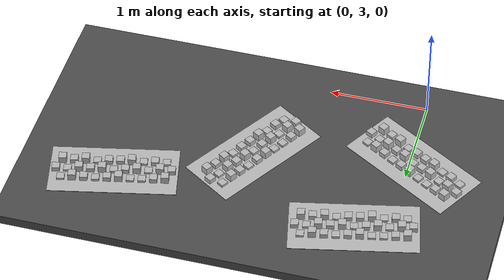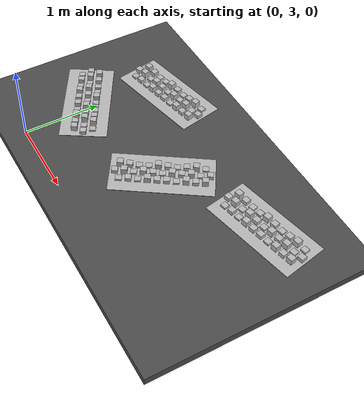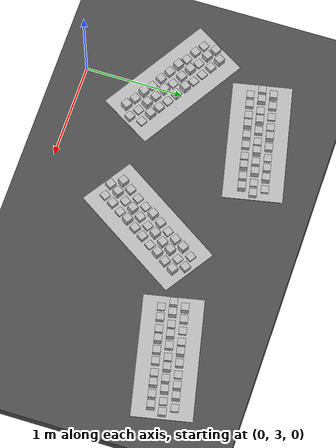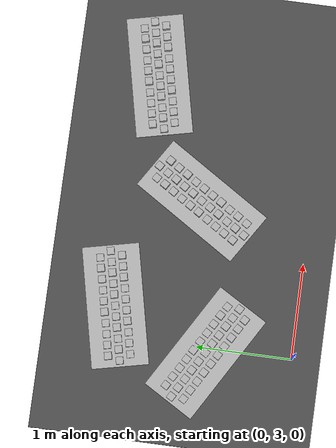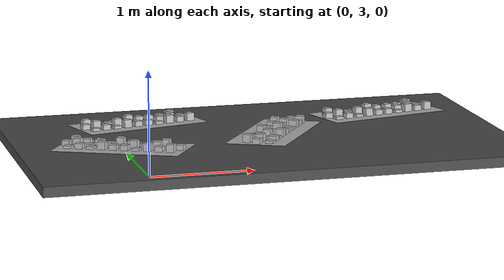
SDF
<sdf version="1.6">
 <world name="default">
  <model name="ground_plane">
   <static>1</static>
   <link name="link">
    <collision name="collision">
     <geometry><plane><normal>0 0 1</normal><size>100 100</size></plane></geometry>
     <surface>
      <contact><collide_bitmask>65535</collide_bitmask></contact>
      <friction><ode><mu>100</mu><mu2>50</mu2></ode></friction>
     </surface>
    </collision>
    <visual name="visual">
     <cast_shadows>0</cast_shadows>
     <geometry><plane><normal>0 0 1</normal><size>100 100</size></plane></geometry>
     <material>
      <script><uri>file://media/materials/scripts/gazebo.material</uri><name>Gazebo/Grey</name></script>
     </material>
    </visual>
   </link>
  </model>
  <model name="frc2016_roughterrain_clone_2_clone_0_clone">
   <static>1</static>
   <link name="link">
    <visual name="platform">
     <pose>0 0 0.08269 0 -0 0</pose>
     <geometry><box><size>1.27 0.5969 0.003175</size></box></geometry>
    </visual>
    <collision name="platform">
     <pose>0 0 0.08269 0 -0 0</pose>
     <geometry><box><size>1.27 0.5969 0.003175</size></box></geometry>
    </collision>
    <visual name="row1_block1_sm">
     <pose>0.51435 0.1143 0.09698 0 -0 0</pose>
     <geometry><box><size>0.0762 0.0762 0.0254</size></box></geometry>
    </visual>
    <collision name="row1_block1_sm">
     <pose>0.51435 0.1143 0.09698 0 -0 0</pose>
     <geometry><box><size>0.0762 0.0762 0.0254</size></box></geometry>
    </collision>
    <visual name="row1_block2_lg">
     <pose>0.40005 0.1143 0.12238 0 -0 0</pose>
     <geometry><box><size>0.0762 0.0762 0.0762</size></box></geometry>
    </visual>
    <collision name="row1_block2_lg">
     <pose>0.40005 0.1143 0.12238 0 -0 0</pose>
     <geometry><box><size>0.0762 0.0762 0.0762</size></box></geometry>
    </collision>
    <visual name="row1_block3_md">
     <pose>0.28575 0.1143 0.10968 0 -0 0</pose>
     <geometry><box><size>0.0762 0.0762 0.0508</size></box></geometry>
    </visual>
    <collision name="row1_block3_md">
     <pose>0.28575 0.1143 0.10968 0 -0 0</pose>
     <geometry><box><size>0.0762 0.0762 0.0508</size></box></geometry>
    </collision>
    <visual name="row1_block4_sm">
     <pose>0.17145 0.1143 0.09698 0 -0 0</pose>
     <geometry><box><size>0.0762 0.0762 0.0254</size></box></geometry>
    </visual>
    <collision name="row1_block4_sm">
     <pose>0.17145 0.1143 0.09698 0 -0 0</pose>
     <geometry><box><size>0.0762 0.0762 0.0254</size></box></geometry>
    </collision>
    <visual name="row1_block5_md">
     <pose>0.05715 0.1143 0.10968 0 -0 0</pose>
     <geometry><box><size>0.0762 0.0762 0.0508</size></box></geometry>
    </visual>
    <collision name="row1_block5_md">
     <pose>0.05715 0.1143 0.10968 0 -0 0</pose>
     <geometry><box><size>0.0762 0.0762 0.0508</size></box></geometry>
    </collision>
    <visual name="row1_block6_lg">
     <pose>-0.05715 0.1143 0.12238 0 -0 0</pose>
     <geometry><box><size>0.0762 0.0762 0.0762</size></box></geometry>
    </visual>
    <collision name="row1_block6_lg">
     <pose>-0.05715 0.1143 0.12238 0 -0 0</pose>
     <geometry><box><size>0.0762 0.0762 0.0762</size></box></geometry>
    </collision>
    <visual name="row1_block7_sm">
     <pose>-0.17145 0.1143 0.09698 0 -0 0</pose>
     <geometry><box><size>0.0762 0.0762 0.0254</size></box></geometry>
    </visual>
    <collision name="row1_block7_sm">
     <pose>-0.17145 0.1143 0.09698 0 -0 0</pose>
     <geometry><box><size>0.0762 0.0762 0.0254</size></box></geometry>
    </collision>
    <visual name="row1_block8_sm">
     <pose>-0.28575 0.1143 0.09698 0 -0 0</pose>
     <geometry><box><size>0.0762 0.0762 0.0254</size></box></geometry>
    </visual>
    <collision name="row1_block8_sm">
     <pose>-0.28575 0.1143 0.09698 0 -0 0</pose>
     <geometry><box><size>0.0762 0.0762 0.0254</size></box></geometry>
    </collision>
    <visual name="row1_block9_md">
     <pose>-0.40005 0.1143 0.10968 0 -0 0</pose>
     <geometry><box><size>0.0762 0.0762 0.0508</size></box></geometry>
    </visual>
    <collision name="row1_block9_md">
     <pose>-0.40005 0.1143 0.10968 0 -0 0</pose>
     <geometry><box><size>0.0762 0.0762 0.0508</size></box></geometry>
    </collision>
    <visual name="row1_block10_lg">
     <pose>-0.51435 0.1143 0.12238 0 -0 0</pose>
     <geometry><box><size>0.0762 0.0762 0.0762</size></box></geometry>
    </visual>
    <collision name="row1_block10_lg">
     <pose>-0.51435 0.1143 0.12238 0 -0 0</pose>
     <geometry><box><size>0.0762 0.0762 0.0762</size></box></geometry>
    </collision>
    <visual name="row2_block1_md">
     <pose>0.5715 0 0.10968 0 -0 0</pose>
     <geometry><box><size>0.0762 0.0762 0.0508</size></box></geometry>
    </visual>
    <collision name="row2_block1_md">
     <pose>0.5715 0 0.10968 0 -0 0</pose>
     <geometry><box><size>0.0762 0.0762 0.0508</size></box></geometry>
    </collision>
    <visual name="row2_block2_sm">
     <pose>0.4572 0 0.09698 0 -0 0</pose>
     <geometry><box><size>0.0762 0.0762 0.0254</size></box></geometry>
    </visual>
    <collision name="row2_block2_sm">
     <pose>0.4572 0 0.09698 0 -0 0</pose>
     <geometry><box><size>0.0762 0.0762 0.0254</size></box></geometry>
    </collision>
    <visual name="row2_block3_lg">
     <pose>0.3429 0 0.12238 0 -0 0</pose>
     <geometry><box><size>0.0762 0.0762 0.0762</size></box></geometry>
    </visual>
    <collision name="row2_block3_lg">
     <pose>0.3429 0 0.12238 0 -0 0</pose>
     <geometry><box><size>0.0762 0.0762 0.0762</size></box></geometry>
    </collision>
    <visual name="row2_block4_md">
     <pose>0.2286 0 0.10968 0 -0 0</pose>
     <geometry><box><size>0.0762 0.0762 0.0508</size></box></geometry>
    </visual>
    <collision name="row2_block4_md">
     <pose>0.2286 0 0.10968 0 -0 0</pose>
     <geometry><box><size>0.0762 0.0762 0.0508</size></box></geometry>
    </collision>
    <visual name="row2_block5_lg">
     <pose>0.1143 0 0.12238 0 -0 0</pose>
     <geometry><box><size>0.0762 0.0762 0.0762</size></box></geometry>
    </visual>
    <collision name="row2_block5_lg">
     <pose>0.1143 0 0.12238 0 -0 0</pose>
     <geometry><box><size>0.0762 0.0762 0.0762</size></box></geometry>
    </collision>
    <visual name="row2_block6_sm">
     <pose>0 0 0.09698 0 -0 0</pose>
     <geometry><box><size>0.0762 0.0762 0.0254</size></box></geometry>
    </visual>
    <collision name="row2_block6_sm">
     <pose>0 0 0.09698 0 -0 0</pose>
     <geometry><box><size>0.0762 0.0762 0.0254</size></box></geometry>
    </collision>
    <visual name="row2_block7_md">
     <pose>-0.1143 0 0.10968 0 -0 0</pose>
     <geometry><box><size>0.0762 0.0762 0.0508</size></box></geometry>
    </visual>
    <collision name="row2_block7_md">
     <pose>-0.1143 0 0.10968 0 -0 0</pose>
     <geometry><box><size>0.0762 0.0762 0.0508</size></box></geometry>
    </collision>
    <visual name="row2_block8_lg">
     <pose>-0.2286 0 0.12238 0 -0 0</pose>
     <geometry><box><size>0.0762 0.0762 0.0762</size></box></geometry>
    </visual>
    <collision name="row2_block8_lg">
     <pose>-0.2286 0 0.12238 0 -0 0</pose>
     <geometry><box><size>0.0762 0.0762 0.0762</size></box></geometry>
    </collision>
    <visual name="row2_block9_sm">
     <pose>-0.3429 0 0.09698 0 -0 0</pose>
     <geometry><box><size>0.0762 0.0762 0.0254</size></box></geometry>
    </visual>
    <collision name="row2_block9_sm">
     <pose>-0.3429 0 0.09698 0 -0 0</pose>
     <geometry><box><size>0.0762 0.0762 0.0254</size></box></geometry>
    </collision>
    <visual name="row2_block10_lg">
     <pose>-0.4572 0 0.12238 0 -0 0</pose>
     <geometry><box><size>0.0762 0.0762 0.0762</size></box></geometry>
    </visual>
    <collision name="row2_block10_lg">
     <pose>-0.4572 0 0.12238 0 -0 0</pose>
     <geometry><box><size>0.0762 0.0762 0.0762</size></box></geometry>
    </collision>
    <visual name="row2_block11_md">
     <pose>-0.5715 0 0.10968 0 -0 0</pose>
     <geometry><box><size>0.0762 0.0762 0.0508</size></box></geometry>
    </visual>
    <collision name="row2_block11_md">
     <pose>-0.5715 0 0.10968 0 -0 0</pose>
     <geometry><box><size>0.0762 0.0762 0.0508</size></box></geometry>
    </collision>
    <visual name="row3_block1_lg">
     <pose>0.51435 -0.1143 0.12238 0 -0 0</pose>
     <geometry><box><size>0.0762 0.0762 0.0762</size></box></geometry>
    </visual>
    <collision name="row3_block1_lg">
     <pose>0.51435 -0.1143 0.12238 0 -0 0</pose>
     <geometry><box><size>0.0762 0.0762 0.0762</size></box></geometry>
    </collision>
    <visual name="row3_block2_md">
     <pose>0.40005 -0.1143 0.10968 0 -0 0</pose>
     <geometry><box><size>0.0762 0.0762 0.0508</size></box></geometry>
    </visual>
    <collision name="row3_block2_md">
     <pose>0.40005 -0.1143 0.10968 0 -0 0</pose>
     <geometry><box><size>0.0762 0.0762 0.0508</size></box></geometry>
    </collision>
    <visual name="row3_block3_lg">
     <pose>0.28575 -0.1143 0.12238 0 -0 0</pose>
     <geometry><box><size>0.0762 0.0762 0.0762</size></box></geometry>
    </visual>
    <collision name="row3_block3_lg">
     <pose>0.28575 -0.1143 0.12238 0 -0 0</pose>
     <geometry><box><size>0.0762 0.0762 0.0762</size></box></geometry>
    </collision>
    <visual name="row3_block4_sm">
     <pose>0.17145 -0.1143 0.09698 0 -0 0</pose>
     <geometry><box><size>0.0762 0.0762 0.0254</size></box></geometry>
    </visual>
    <collision name="row3_block4_sm">
     <pose>0.17145 -0.1143 0.09698 0 -0 0</pose>
     <geometry><box><size>0.0762 0.0762 0.0254</size></box></geometry>
    </collision>
    <visual name="row3_block5_md">
     <pose>0.05715 -0.1143 0.10968 0 -0 0</pose>
     <geometry><box><size>0.0762 0.0762 0.0508</size></box></geometry>
    </visual>
    <collision name="row3_block5_md">
     <pose>0.05715 -0.1143 0.10968 0 -0 0</pose>
     <geometry><box><size>0.0762 0.0762 0.0508</size></box></geometry>
    </collision>
    <visual name="row3_block6_md">
     <pose>-0.05715 -0.1143 0.10968 0 -0 0</pose>
     <geometry><box><size>0.0762 0.0762 0.0508</size></box></geometry>
    </visual>
    <collision name="row3_block6_md">
     <pose>-0.05715 -0.1143 0.10968 0 -0 0</pose>
     <geometry><box><size>0.0762 0.0762 0.0508</size></box></geometry>
    </collision>
    <visual name="row3_block7_lg">
     <pose>-0.17145 -0.1143 0.12238 0 -0 0</pose>
     <geometry><box><size>0.0762 0.0762 0.0762</size></box></geometry>
    </visual>
    <collision name="row3_block7_lg">
     <pose>-0.17145 -0.1143 0.12238 0 -0 0</pose>
     <geometry><box><size>0.0762 0.0762 0.0762</size></box></geometry>
    </collision>
    <visual name="row3_block8_sm">
     <pose>-0.28575 -0.1143 0.09698 0 -0 0</pose>
     <geometry><box><size>0.0762 0.0762 0.0254</size></box></geometry>
    </visual>
    <collision name="row3_block8_sm">
     <pose>-0.28575 -0.1143 0.09698 0 -0 0</pose>
     <geometry><box><size>0.0762 0.0762 0.0254</size></box></geometry>
    </collision>
    <visual name="row3_block9_md">
     <pose>-0.40005 -0.1143 0.10968 0 -0 0</pose>
     <geometry><box><size>0.0762 0.0762 0.0508</size></box></geometry>
    </visual>
    <collision name="row3_block9_md">
     <pose>-0.40005 -0.1143 0.10968 0 -0 0</pose>
     <geometry><box><size>0.0762 0.0762 0.0508</size></box></geometry>
    </collision>
    <visual name="row3_block10_sm">
     <pose>-0.51435 -0.1143 0.09698 0 -0 0</pose>
     <geometry><box><size>0.0762 0.0762 0.0254</size></box></geometry>
    </visual>
    <collision name="row3_block10_sm">
     <pose>-0.51435 -0.1143 0.09698 0 -0 0</pose>
     <geometry><box><size>0.0762 0.0762 0.0254</size></box></geometry>
    </collision>
   </link>
   <pose>0.309695 4.87951 -0.002523 -0.037204 0.000686 0.216059</pose>
  </model>
  <model name="frc2016_roughterrain_clone_2_clone_clone_clone_clone">
   <static>1</static>
   <link name="link">
    <visual name="platform">
     <pose>0 0 0.08269 0 -0 0</pose>
     <geometry><box><size>1.27 0.5969 0.003175</size></box></geometry>
    </visual>
    <collision name="platform">
     <pose>0 0 0.08269 0 -0 0</pose>
     <geometry><box><size>1.27 0.5969 0.003175</size></box></geometry>
    </collision>
    <visual name="row1_block1_sm">
     <pose>0.51435 0.1143 0.09698 0 -0 0</pose>
     <geometry><box><size>0.0762 0.0762 0.0254</size></box></geometry>
    </visual>
    <collision name="row1_block1_sm">
     <pose>0.51435 0.1143 0.09698 0 -0 0</pose>
     <geometry><box><size>0.0762 0.0762 0.0254</size></box></geometry>
    </collision>
    <visual name="row1_block2_lg">
     <pose>0.40005 0.1143 0.12238 0 -0 0</pose>
     <geometry><box><size>0.0762 0.0762 0.0762</size></box></geometry>
    </visual>
    <collision name="row1_block2_lg">
     <pose>0.40005 0.1143 0.12238 0 -0 0</pose>
     <geometry><box><size>0.0762 0.0762 0.0762</size></box></geometry>
    </collision>
    <visual name="row1_block3_md">
     <pose>0.28575 0.1143 0.10968 0 -0 0</pose>
     <geometry><box><size>0.0762 0.0762 0.0508</size></box></geometry>
    </visual>
    <collision name="row1_block3_md">
     <pose>0.28575 0.1143 0.10968 0 -0 0</pose>
     <geometry><box><size>0.0762 0.0762 0.0508</size></box></geometry>
    </collision>
    <visual name="row1_block4_sm">
     <pose>0.17145 0.1143 0.09698 0 -0 0</pose>
     <geometry><box><size>0.0762 0.0762 0.0254</size></box></geometry>
    </visual>
    <collision name="row1_block4_sm">
     <pose>0.17145 0.1143 0.09698 0 -0 0</pose>
     <geometry><box><size>0.0762 0.0762 0.0254</size></box></geometry>
    </collision>
    <visual name="row1_block5_md">
     <pose>0.05715 0.1143 0.10968 0 -0 0</pose>
     <geometry><box><size>0.0762 0.0762 0.0508</size></box></geometry>
    </visual>
    <collision name="row1_block5_md">
     <pose>0.05715 0.1143 0.10968 0 -0 0</pose>
     <geometry><box><size>0.0762 0.0762 0.0508</size></box></geometry>
    </collision>
    <visual name="row1_block6_lg">
     <pose>-0.05715 0.1143 0.12238 0 -0 0</pose>
     <geometry><box><size>0.0762 0.0762 0.0762</size></box></geometry>
    </visual>
    <collision name="row1_block6_lg">
     <pose>-0.05715 0.1143 0.12238 0 -0 0</pose>
     <geometry><box><size>0.0762 0.0762 0.0762</size></box></geometry>
    </collision>
    <visual name="row1_block7_sm">
     <pose>-0.17145 0.1143 0.09698 0 -0 0</pose>
     <geometry><box><size>0.0762 0.0762 0.0254</size></box></geometry>
    </visual>
    <collision name="row1_block7_sm">
     <pose>-0.17145 0.1143 0.09698 0 -0 0</pose>
     <geometry><box><size>0.0762 0.0762 0.0254</size></box></geometry>
    </collision>
    <visual name="row1_block8_sm">
     <pose>-0.28575 0.1143 0.09698 0 -0 0</pose>
     <geometry><box><size>0.0762 0.0762 0.0254</size></box></geometry>
    </visual>
    <collision name="row1_block8_sm">
     <pose>-0.28575 0.1143 0.09698 0 -0 0</pose>
     <geometry><box><size>0.0762 0.0762 0.0254</size></box></geometry>
    </collision>
    <visual name="row1_block9_md">
     <pose>-0.40005 0.1143 0.10968 0 -0 0</pose>
     <geometry><box><size>0.0762 0.0762 0.0508</size></box></geometry>
    </visual>
    <collision name="row1_block9_md">
     <pose>-0.40005 0.1143 0.10968 0 -0 0</pose>
     <geometry><box><size>0.0762 0.0762 0.0508</size></box></geometry>
    </collision>
    <visual name="row1_block10_lg">
     <pose>-0.51435 0.1143 0.12238 0 -0 0</pose>
     <geometry><box><size>0.0762 0.0762 0.0762</size></box></geometry>
    </visual>
    <collision name="row1_block10_lg">
     <pose>-0.51435 0.1143 0.12238 0 -0 0</pose>
     <geometry><box><size>0.0762 0.0762 0.0762</size></box></geometry>
    </collision>
    <visual name="row2_block1_md">
     <pose>0.5715 0 0.10968 0 -0 0</pose>
     <geometry><box><size>0.0762 0.0762 0.0508</size></box></geometry>
    </visual>
    <collision name="row2_block1_md">
     <pose>0.5715 0 0.10968 0 -0 0</pose>
     <geometry><box><size>0.0762 0.0762 0.0508</size></box></geometry>
    </collision>
    <visual name="row2_block2_sm">
     <pose>0.4572 0 0.09698 0 -0 0</pose>
     <geometry><box><size>0.0762 0.0762 0.0254</size></box></geometry>
    </visual>
    <collision name="row2_block2_sm">
     <pose>0.4572 0 0.09698 0 -0 0</pose>
     <geometry><box><size>0.0762 0.0762 0.0254</size></box></geometry>
    </collision>
    <visual name="row2_block3_lg">
     <pose>0.3429 0 0.12238 0 -0 0</pose>
     <geometry><box><size>0.0762 0.0762 0.0762</size></box></geometry>
    </visual>
    <collision name="row2_block3_lg">
     <pose>0.3429 0 0.12238 0 -0 0</pose>
     <geometry><box><size>0.0762 0.0762 0.0762</size></box></geometry>
    </collision>
    <visual name="row2_block4_md">
     <pose>0.2286 0 0.10968 0 -0 0</pose>
     <geometry><box><size>0.0762 0.0762 0.0508</size></box></geometry>
    </visual>
    <collision name="row2_block4_md">
     <pose>0.2286 0 0.10968 0 -0 0</pose>
     <geometry><box><size>0.0762 0.0762 0.0508</size></box></geometry>
    </collision>
    <visual name="row2_block5_lg">
     <pose>0.1143 0 0.12238 0 -0 0</pose>
     <geometry><box><size>0.0762 0.0762 0.0762</size></box></geometry>
    </visual>
    <collision name="row2_block5_lg">
     <pose>0.1143 0 0.12238 0 -0 0</pose>
     <geometry><box><size>0.0762 0.0762 0.0762</size></box></geometry>
    </collision>
    <visual name="row2_block6_sm">
     <pose>0 0 0.09698 0 -0 0</pose>
     <geometry><box><size>0.0762 0.0762 0.0254</size></box></geometry>
    </visual>
    <collision name="row2_block6_sm">
     <pose>0 0 0.09698 0 -0 0</pose>
     <geometry><box><size>0.0762 0.0762 0.0254</size></box></geometry>
    </collision>
    <visual name="row2_block7_md">
     <pose>-0.1143 0 0.10968 0 -0 0</pose>
     <geometry><box><size>0.0762 0.0762 0.0508</size></box></geometry>
    </visual>
    <collision name="row2_block7_md">
     <pose>-0.1143 0 0.10968 0 -0 0</pose>
     <geometry><box><size>0.0762 0.0762 0.0508</size></box></geometry>
    </collision>
    <visual name="row2_block8_lg">
     <pose>-0.2286 0 0.12238 0 -0 0</pose>
     <geometry><box><size>0.0762 0.0762 0.0762</size></box></geometry>
    </visual>
    <collision name="row2_block8_lg">
     <pose>-0.2286 0 0.12238 0 -0 0</pose>
     <geometry><box><size>0.0762 0.0762 0.0762</size></box></geometry>
    </collision>
    <visual name="row2_block9_sm">
     <pose>-0.3429 0 0.09698 0 -0 0</pose>
     <geometry><box><size>0.0762 0.0762 0.0254</size></box></geometry>
    </visual>
    <collision name="row2_block9_sm">
     <pose>-0.3429 0 0.09698 0 -0 0</pose>
     <geometry><box><size>0.0762 0.0762 0.0254</size></box></geometry>
    </collision>
    <visual name="row2_block10_lg">
     <pose>-0.4572 0 0.12238 0 -0 0</pose>
     <geometry><box><size>0.0762 0.0762 0.0762</size></box></geometry>
    </visual>
    <collision name="row2_block10_lg">
     <pose>-0.4572 0 0.12238 0 -0 0</pose>
     <geometry><box><size>0.0762 0.0762 0.0762</size></box></geometry>
    </collision>
    <visual name="row2_block11_md">
     <pose>-0.5715 0 0.10968 0 -0 0</pose>
     <geometry><box><size>0.0762 0.0762 0.0508</size></box></geometry>
    </visual>
    <collision name="row2_block11_md">
     <pose>-0.5715 0 0.10968 0 -0 0</pose>
     <geometry><box><size>0.0762 0.0762 0.0508</size></box></geometry>
    </collision>
    <visual name="row3_block1_lg">
     <pose>0.51435 -0.1143 0.12238 0 -0 0</pose>
     <geometry><box><size>0.0762 0.0762 0.0762</size></box></geometry>
    </visual>
    <collision name="row3_block1_lg">
     <pose>0.51435 -0.1143 0.12238 0 -0 0</pose>
     <geometry><box><size>0.0762 0.0762 0.0762</size></box></geometry>
    </collision>
    <visual name="row3_block2_md">
     <pose>0.40005 -0.1143 0.10968 0 -0 0</pose>
     <geometry><box><size>0.0762 0.0762 0.0508</size></box></geometry>
    </visual>
    <collision name="row3_block2_md">
     <pose>0.40005 -0.1143 0.10968 0 -0 0</pose>
     <geometry><box><size>0.0762 0.0762 0.0508</size></box></geometry>
    </collision>
    <visual name="row3_block3_lg">
     <pose>0.28575 -0.1143 0.12238 0 -0 0</pose>
     <geometry><box><size>0.0762 0.0762 0.0762</size></box></geometry>
    </visual>
    <collision name="row3_block3_lg">
     <pose>0.28575 -0.1143 0.12238 0 -0 0</pose>
     <geometry><box><size>0.0762 0.0762 0.0762</size></box></geometry>
    </collision>
    <visual name="row3_block4_sm">
     <pose>0.17145 -0.1143 0.09698 0 -0 0</pose>
     <geometry><box><size>0.0762 0.0762 0.0254</size></box></geometry>
    </visual>
    <collision name="row3_block4_sm">
     <pose>0.17145 -0.1143 0.09698 0 -0 0</pose>
     <geometry><box><size>0.0762 0.0762 0.0254</size></box></geometry>
    </collision>
    <visual name="row3_block5_md">
     <pose>0.05715 -0.1143 0.10968 0 -0 0</pose>
     <geometry><box><size>0.0762 0.0762 0.0508</size></box></geometry>
    </visual>
    <collision name="row3_block5_md">
     <pose>0.05715 -0.1143 0.10968 0 -0 0</pose>
     <geometry><box><size>0.0762 0.0762 0.0508</size></box></geometry>
    </collision>
    <visual name="row3_block6_md">
     <pose>-0.05715 -0.1143 0.10968 0 -0 0</pose>
     <geometry><box><size>0.0762 0.0762 0.0508</size></box></geometry>
    </visual>
    <collision name="row3_block6_md">
     <pose>-0.05715 -0.1143 0.10968 0 -0 0</pose>
     <geometry><box><size>0.0762 0.0762 0.0508</size></box></geometry>
    </collision>
    <visual name="row3_block7_lg">
     <pose>-0.17145 -0.1143 0.12238 0 -0 0</pose>
     <geometry><box><size>0.0762 0.0762 0.0762</size></box></geometry>
    </visual>
    <collision name="row3_block7_lg">
     <pose>-0.17145 -0.1143 0.12238 0 -0 0</pose>
     <geometry><box><size>0.0762 0.0762 0.0762</size></box></geometry>
    </collision>
    <visual name="row3_block8_sm">
     <pose>-0.28575 -0.1143 0.09698 0 -0 0</pose>
     <geometry><box><size>0.0762 0.0762 0.0254</size></box></geometry>
    </visual>
    <collision name="row3_block8_sm">
     <pose>-0.28575 -0.1143 0.09698 0 -0 0</pose>
     <geometry><box><size>0.0762 0.0762 0.0254</size></box></geometry>
    </collision>
    <visual name="row3_block9_md">
     <pose>-0.40005 -0.1143 0.10968 0 -0 0</pose>
     <geometry><box><size>0.0762 0.0762 0.0508</size></box></geometry>
    </visual>
    <collision name="row3_block9_md">
     <pose>-0.40005 -0.1143 0.10968 0 -0 0</pose>
     <geometry><box><size>0.0762 0.0762 0.0508</size></box></geometry>
    </collision>
    <visual name="row3_block10_sm">
     <pose>-0.51435 -0.1143 0.09698 0 -0 0</pose>
     <geometry><box><size>0.0762 0.0762 0.0254</size></box></geometry>
    </visual>
    <collision name="row3_block10_sm">
     <pose>-0.51435 -0.1143 0.09698 0 -0 0</pose>
     <geometry><box><size>0.0762 0.0762 0.0254</size></box></geometry>
    </collision>
   </link>
   <pose>1.51448 4.13381 0 -0.025774 0.026842 1.00316</pose>
  </model>
  <model name="frc2016_roughterrain_clone_2_clone_clone_3_clone">
   <static>1</static>
   <link name="link">
    <visual name="platform">
     <pose>0 0 0.08269 0 -0 0</pose>
     <geometry><box><size>1.27 0.5969 0.003175</size></box></geometry>
    </visual>
    <collision name="platform">
     <pose>0 0 0.08269 0 -0 0</pose>
     <geometry><box><size>1.27 0.5969 0.003175</size></box></geometry>
    </collision>
    <visual name="row1_block1_sm">
     <pose>0.51435 0.1143 0.09698 0 -0 0</pose>
     <geometry><box><size>0.0762 0.0762 0.0254</size></box></geometry>
    </visual>
    <collision name="row1_block1_sm">
     <pose>0.51435 0.1143 0.09698 0 -0 0</pose>
     <geometry><box><size>0.0762 0.0762 0.0254</size></box></geometry>
    </collision>
    <visual name="row1_block2_lg">
     <pose>0.40005 0.1143 0.12238 0 -0 0</pose>
     <geometry><box><size>0.0762 0.0762 0.0762</size></box></geometry>
    </visual>
    <collision name="row1_block2_lg">
     <pose>0.40005 0.1143 0.12238 0 -0 0</pose>
     <geometry><box><size>0.0762 0.0762 0.0762</size></box></geometry>
    </collision>
    <visual name="row1_block3_md">
     <pose>0.28575 0.1143 0.10968 0 -0 0</pose>
     <geometry><box><size>0.0762 0.0762 0.0508</size></box></geometry>
    </visual>
    <collision name="row1_block3_md">
     <pose>0.28575 0.1143 0.10968 0 -0 0</pose>
     <geometry><box><size>0.0762 0.0762 0.0508</size></box></geometry>
    </collision>
    <visual name="row1_block4_sm">
     <pose>0.17145 0.1143 0.09698 0 -0 0</pose>
     <geometry><box><size>0.0762 0.0762 0.0254</size></box></geometry>
    </visual>
    <collision name="row1_block4_sm">
     <pose>0.17145 0.1143 0.09698 0 -0 0</pose>
     <geometry><box><size>0.0762 0.0762 0.0254</size></box></geometry>
    </collision>
    <visual name="row1_block5_md">
     <pose>0.05715 0.1143 0.10968 0 -0 0</pose>
     <geometry><box><size>0.0762 0.0762 0.0508</size></box></geometry>
    </visual>
    <collision name="row1_block5_md">
     <pose>0.05715 0.1143 0.10968 0 -0 0</pose>
     <geometry><box><size>0.0762 0.0762 0.0508</size></box></geometry>
    </collision>
    <visual name="row1_block6_lg">
     <pose>-0.05715 0.1143 0.12238 0 -0 0</pose>
     <geometry><box><size>0.0762 0.0762 0.0762</size></box></geometry>
    </visual>
    <collision name="row1_block6_lg">
     <pose>-0.05715 0.1143 0.12238 0 -0 0</pose>
     <geometry><box><size>0.0762 0.0762 0.0762</size></box></geometry>
    </collision>
    <visual name="row1_block7_sm">
     <pose>-0.17145 0.1143 0.09698 0 -0 0</pose>
     <geometry><box><size>0.0762 0.0762 0.0254</size></box></geometry>
    </visual>
    <collision name="row1_block7_sm">
     <pose>-0.17145 0.1143 0.09698 0 -0 0</pose>
     <geometry><box><size>0.0762 0.0762 0.0254</size></box></geometry>
    </collision>
    <visual name="row1_block8_sm">
     <pose>-0.28575 0.1143 0.09698 0 -0 0</pose>
     <geometry><box><size>0.0762 0.0762 0.0254</size></box></geometry>
    </visual>
    <collision name="row1_block8_sm">
     <pose>-0.28575 0.1143 0.09698 0 -0 0</pose>
     <geometry><box><size>0.0762 0.0762 0.0254</size></box></geometry>
    </collision>
    <visual name="row1_block9_md">
     <pose>-0.40005 0.1143 0.10968 0 -0 0</pose>
     <geometry><box><size>0.0762 0.0762 0.0508</size></box></geometry>
    </visual>
    <collision name="row1_block9_md">
     <pose>-0.40005 0.1143 0.10968 0 -0 0</pose>
     <geometry><box><size>0.0762 0.0762 0.0508</size></box></geometry>
    </collision>
    <visual name="row1_block10_lg">
     <pose>-0.51435 0.1143 0.12238 0 -0 0</pose>
     <geometry><box><size>0.0762 0.0762 0.0762</size></box></geometry>
    </visual>
    <collision name="row1_block10_lg">
     <pose>-0.51435 0.1143 0.12238 0 -0 0</pose>
     <geometry><box><size>0.0762 0.0762 0.0762</size></box></geometry>
    </collision>
    <visual name="row2_block1_md">
     <pose>0.5715 0 0.10968 0 -0 0</pose>
     <geometry><box><size>0.0762 0.0762 0.0508</size></box></geometry>
    </visual>
    <collision name="row2_block1_md">
     <pose>0.5715 0 0.10968 0 -0 0</pose>
     <geometry><box><size>0.0762 0.0762 0.0508</size></box></geometry>
    </collision>
    <visual name="row2_block2_sm">
     <pose>0.4572 0 0.09698 0 -0 0</pose>
     <geometry><box><size>0.0762 0.0762 0.0254</size></box></geometry>
    </visual>
    <collision name="row2_block2_sm">
     <pose>0.4572 0 0.09698 0 -0 0</pose>
     <geometry><box><size>0.0762 0.0762 0.0254</size></box></geometry>
    </collision>
    <visual name="row2_block3_lg">
     <pose>0.3429 0 0.12238 0 -0 0</pose>
     <geometry><box><size>0.0762 0.0762 0.0762</size></box></geometry>
    </visual>
    <collision name="row2_block3_lg">
     <pose>0.3429 0 0.12238 0 -0 0</pose>
     <geometry><box><size>0.0762 0.0762 0.0762</size></box></geometry>
    </collision>
    <visual name="row2_block4_md">
     <pose>0.2286 0 0.10968 0 -0 0</pose>
     <geometry><box><size>0.0762 0.0762 0.0508</size></box></geometry>
    </visual>
    <collision name="row2_block4_md">
     <pose>0.2286 0 0.10968 0 -0 0</pose>
     <geometry><box><size>0.0762 0.0762 0.0508</size></box></geometry>
    </collision>
    <visual name="row2_block5_lg">
     <pose>0.1143 0 0.12238 0 -0 0</pose>
     <geometry><box><size>0.0762 0.0762 0.0762</size></box></geometry>
    </visual>
    <collision name="row2_block5_lg">
     <pose>0.1143 0 0.12238 0 -0 0</pose>
     <geometry><box><size>0.0762 0.0762 0.0762</size></box></geometry>
    </collision>
    <visual name="row2_block6_sm">
     <pose>0 0 0.09698 0 -0 0</pose>
     <geometry><box><size>0.0762 0.0762 0.0254</size></box></geometry>
    </visual>
    <collision name="row2_block6_sm">
     <pose>0 0 0.09698 0 -0 0</pose>
     <geometry><box><size>0.0762 0.0762 0.0254</size></box></geometry>
    </collision>
    <visual name="row2_block7_md">
     <pose>-0.1143 0 0.10968 0 -0 0</pose>
     <geometry><box><size>0.0762 0.0762 0.0508</size></box></geometry>
    </visual>
    <collision name="row2_block7_md">
     <pose>-0.1143 0 0.10968 0 -0 0</pose>
     <geometry><box><size>0.0762 0.0762 0.0508</size></box></geometry>
    </collision>
    <visual name="row2_block8_lg">
     <pose>-0.2286 0 0.12238 0 -0 0</pose>
     <geometry><box><size>0.0762 0.0762 0.0762</size></box></geometry>
    </visual>
    <collision name="row2_block8_lg">
     <pose>-0.2286 0 0.12238 0 -0 0</pose>
     <geometry><box><size>0.0762 0.0762 0.0762</size></box></geometry>
    </collision>
    <visual name="row2_block9_sm">
     <pose>-0.3429 0 0.09698 0 -0 0</pose>
     <geometry><box><size>0.0762 0.0762 0.0254</size></box></geometry>
    </visual>
    <collision name="row2_block9_sm">
     <pose>-0.3429 0 0.09698 0 -0 0</pose>
     <geometry><box><size>0.0762 0.0762 0.0254</size></box></geometry>
    </collision>
    <visual name="row2_block10_lg">
     <pose>-0.4572 0 0.12238 0 -0 0</pose>
     <geometry><box><size>0.0762 0.0762 0.0762</size></box></geometry>
    </visual>
    <collision name="row2_block10_lg">
     <pose>-0.4572 0 0.12238 0 -0 0</pose>
     <geometry><box><size>0.0762 0.0762 0.0762</size></box></geometry>
    </collision>
    <visual name="row2_block11_md">
     <pose>-0.5715 0 0.10968 0 -0 0</pose>
     <geometry><box><size>0.0762 0.0762 0.0508</size></box></geometry>
    </visual>
    <collision name="row2_block11_md">
     <pose>-0.5715 0 0.10968 0 -0 0</pose>
     <geometry><box><size>0.0762 0.0762 0.0508</size></box></geometry>
    </collision>
    <visual name="row3_block1_lg">
     <pose>0.51435 -0.1143 0.12238 0 -0 0</pose>
     <geometry><box><size>0.0762 0.0762 0.0762</size></box></geometry>
    </visual>
    <collision name="row3_block1_lg">
     <pose>0.51435 -0.1143 0.12238 0 -0 0</pose>
     <geometry><box><size>0.0762 0.0762 0.0762</size></box></geometry>
    </collision>
    <visual name="row3_block2_md">
     <pose>0.40005 -0.1143 0.10968 0 -0 0</pose>
     <geometry><box><size>0.0762 0.0762 0.0508</size></box></geometry>
    </visual>
    <collision name="row3_block2_md">
     <pose>0.40005 -0.1143 0.10968 0 -0 0</pose>
     <geometry><box><size>0.0762 0.0762 0.0508</size></box></geometry>
    </collision>
    <visual name="row3_block3_lg">
     <pose>0.28575 -0.1143 0.12238 0 -0 0</pose>
     <geometry><box><size>0.0762 0.0762 0.0762</size></box></geometry>
    </visual>
    <collision name="row3_block3_lg">
     <pose>0.28575 -0.1143 0.12238 0 -0 0</pose>
     <geometry><box><size>0.0762 0.0762 0.0762</size></box></geometry>
    </collision>
    <visual name="row3_block4_sm">
     <pose>0.17145 -0.1143 0.09698 0 -0 0</pose>
     <geometry><box><size>0.0762 0.0762 0.0254</size></box></geometry>
    </visual>
    <collision name="row3_block4_sm">
     <pose>0.17145 -0.1143 0.09698 0 -0 0</pose>
     <geometry><box><size>0.0762 0.0762 0.0254</size></box></geometry>
    </collision>
    <visual name="row3_block5_md">
     <pose>0.05715 -0.1143 0.10968 0 -0 0</pose>
     <geometry><box><size>0.0762 0.0762 0.0508</size></box></geometry>
    </visual>
    <collision name="row3_block5_md">
     <pose>0.05715 -0.1143 0.10968 0 -0 0</pose>
     <geometry><box><size>0.0762 0.0762 0.0508</size></box></geometry>
    </collision>
    <visual name="row3_block6_md">
     <pose>-0.05715 -0.1143 0.10968 0 -0 0</pose>
     <geometry><box><size>0.0762 0.0762 0.0508</size></box></geometry>
    </visual>
    <collision name="row3_block6_md">
     <pose>-0.05715 -0.1143 0.10968 0 -0 0</pose>
     <geometry><box><size>0.0762 0.0762 0.0508</size></box></geometry>
    </collision>
    <visual name="row3_block7_lg">
     <pose>-0.17145 -0.1143 0.12238 0 -0 0</pose>
     <geometry><box><size>0.0762 0.0762 0.0762</size></box></geometry>
    </visual>
    <collision name="row3_block7_lg">
     <pose>-0.17145 -0.1143 0.12238 0 -0 0</pose>
     <geometry><box><size>0.0762 0.0762 0.0762</size></box></geometry>
    </collision>
    <visual name="row3_block8_sm">
     <pose>-0.28575 -0.1143 0.09698 0 -0 0</pose>
     <geometry><box><size>0.0762 0.0762 0.0254</size></box></geometry>
    </visual>
    <collision name="row3_block8_sm">
     <pose>-0.28575 -0.1143 0.09698 0 -0 0</pose>
     <geometry><box><size>0.0762 0.0762 0.0254</size></box></geometry>
    </collision>
    <visual name="row3_block9_md">
     <pose>-0.40005 -0.1143 0.10968 0 -0 0</pose>
     <geometry><box><size>0.0762 0.0762 0.0508</size></box></geometry>
    </visual>
    <collision name="row3_block9_md">
     <pose>-0.40005 -0.1143 0.10968 0 -0 0</pose>
     <geometry><box><size>0.0762 0.0762 0.0508</size></box></geometry>
    </collision>
    <visual name="row3_block10_sm">
     <pose>-0.51435 -0.1143 0.09698 0 -0 0</pose>
     <geometry><box><size>0.0762 0.0762 0.0254</size></box></geometry>
    </visual>
    <collision name="row3_block10_sm">
     <pose>-0.51435 -0.1143 0.09698 0 -0 0</pose>
     <geometry><box><size>0.0762 0.0762 0.0254</size></box></geometry>
    </collision>
   </link>
   <pose>-0.052568 3.88833 0 -0.027683 -0.024868 -0.534065</pose>
  </model>
  <model name="frc2016_roughterrain_clone_2_clone_clone_1_clone_clone_0">
   <static>1</static>
   <link name="link">
    <visual name="platform">
     <pose>0 0 0.08269 0 -0 0</pose>
     <geometry><box><size>1.27 0.5969 0.003175</size></box></geometry>
    </visual>
    <collision name="platform">
     <pose>0 0 0.08269 0 -0 0</pose>
     <geometry><box><size>1.27 0.5969 0.003175</size></box></geometry>
    </collision>
    <visual name="row1_block1_sm">
     <pose>0.51435 0.1143 0.09698 0 -0 0</pose>
     <geometry><box><size>0.0762 0.0762 0.0254</size></box></geometry>
    </visual>
    <collision name="row1_block1_sm">
     <pose>0.51435 0.1143 0.09698 0 -0 0</pose>
     <geometry><box><size>0.0762 0.0762 0.0254</size></box></geometry>
    </collision>
    <visual name="row1_block2_lg">
     <pose>0.40005 0.1143 0.12238 0 -0 0</pose>
     <geometry><box><size>0.0762 0.0762 0.0762</size></box></geometry>
    </visual>
    <collision name="row1_block2_lg">
     <pose>0.40005 0.1143 0.12238 0 -0 0</pose>
     <geometry><box><size>0.0762 0.0762 0.0762</size></box></geometry>
    </collision>
    <visual name="row1_block3_md">
     <pose>0.28575 0.1143 0.10968 0 -0 0</pose>
     <geometry><box><size>0.0762 0.0762 0.0508</size></box></geometry>
    </visual>
    <collision name="row1_block3_md">
     <pose>0.28575 0.1143 0.10968 0 -0 0</pose>
     <geometry><box><size>0.0762 0.0762 0.0508</size></box></geometry>
    </collision>
    <visual name="row1_block4_sm">
     <pose>0.17145 0.1143 0.09698 0 -0 0</pose>
     <geometry><box><size>0.0762 0.0762 0.0254</size></box></geometry>
    </visual>
    <collision name="row1_block4_sm">
     <pose>0.17145 0.1143 0.09698 0 -0 0</pose>
     <geometry><box><size>0.0762 0.0762 0.0254</size></box></geometry>
    </collision>
    <visual name="row1_block5_md">
     <pose>0.05715 0.1143 0.10968 0 -0 0</pose>
     <geometry><box><size>0.0762 0.0762 0.0508</size></box></geometry>
    </visual>
    <collision name="row1_block5_md">
     <pose>0.05715 0.1143 0.10968 0 -0 0</pose>
     <geometry><box><size>0.0762 0.0762 0.0508</size></box></geometry>
    </collision>
    <visual name="row1_block6_lg">
     <pose>-0.05715 0.1143 0.12238 0 -0 0</pose>
     <geometry><box><size>0.0762 0.0762 0.0762</size></box></geometry>
    </visual>
    <collision name="row1_block6_lg">
     <pose>-0.05715 0.1143 0.12238 0 -0 0</pose>
     <geometry><box><size>0.0762 0.0762 0.0762</size></box></geometry>
    </collision>
    <visual name="row1_block7_sm">
     <pose>-0.17145 0.1143 0.09698 0 -0 0</pose>
     <geometry><box><size>0.0762 0.0762 0.0254</size></box></geometry>
    </visual>
    <collision name="row1_block7_sm">
     <pose>-0.17145 0.1143 0.09698 0 -0 0</pose>
     <geometry><box><size>0.0762 0.0762 0.0254</size></box></geometry>
    </collision>
    <visual name="row1_block8_sm">
     <pose>-0.28575 0.1143 0.09698 0 -0 0</pose>
     <geometry><box><size>0.0762 0.0762 0.0254</size></box></geometry>
    </visual>
    <collision name="row1_block8_sm">
     <pose>-0.28575 0.1143 0.09698 0 -0 0</pose>
     <geometry><box><size>0.0762 0.0762 0.0254</size></box></geometry>
    </collision>
    <visual name="row1_block9_md">
     <pose>-0.40005 0.1143 0.10968 0 -0 0</pose>
     <geometry><box><size>0.0762 0.0762 0.0508</size></box></geometry>
    </visual>
    <collision name="row1_block9_md">
     <pose>-0.40005 0.1143 0.10968 0 -0 0</pose>
     <geometry><box><size>0.0762 0.0762 0.0508</size></box></geometry>
    </collision>
    <visual name="row1_block10_lg">
     <pose>-0.51435 0.1143 0.12238 0 -0 0</pose>
     <geometry><box><size>0.0762 0.0762 0.0762</size></box></geometry>
    </visual>
    <collision name="row1_block10_lg">
     <pose>-0.51435 0.1143 0.12238 0 -0 0</pose>
     <geometry><box><size>0.0762 0.0762 0.0762</size></box></geometry>
    </collision>
    <visual name="row2_block1_md">
     <pose>0.5715 0 0.10968 0 -0 0</pose>
     <geometry><box><size>0.0762 0.0762 0.0508</size></box></geometry>
    </visual>
    <collision name="row2_block1_md">
     <pose>0.5715 0 0.10968 0 -0 0</pose>
     <geometry><box><size>0.0762 0.0762 0.0508</size></box></geometry>
    </collision>
    <visual name="row2_block2_sm">
     <pose>0.4572 0 0.09698 0 -0 0</pose>
     <geometry><box><size>0.0762 0.0762 0.0254</size></box></geometry>
    </visual>
    <collision name="row2_block2_sm">
     <pose>0.4572 0 0.09698 0 -0 0</pose>
     <geometry><box><size>0.0762 0.0762 0.0254</size></box></geometry>
    </collision>
    <visual name="row2_block3_lg">
     <pose>0.3429 0 0.12238 0 -0 0</pose>
     <geometry><box><size>0.0762 0.0762 0.0762</size></box></geometry>
    </visual>
    <collision name="row2_block3_lg">
     <pose>0.3429 0 0.12238 0 -0 0</pose>
     <geometry><box><size>0.0762 0.0762 0.0762</size></box></geometry>
    </collision>
    <visual name="row2_block4_md">
     <pose>0.2286 0 0.10968 0 -0 0</pose>
     <geometry><box><size>0.0762 0.0762 0.0508</size></box></geometry>
    </visual>
    <collision name="row2_block4_md">
     <pose>0.2286 0 0.10968 0 -0 0</pose>
     <geometry><box><size>0.0762 0.0762 0.0508</size></box></geometry>
    </collision>
    <visual name="row2_block5_lg">
     <pose>0.1143 0 0.12238 0 -0 0</pose>
     <geometry><box><size>0.0762 0.0762 0.0762</size></box></geometry>
    </visual>
    <collision name="row2_block5_lg">
     <pose>0.1143 0 0.12238 0 -0 0</pose>
     <geometry><box><size>0.0762 0.0762 0.0762</size></box></geometry>
    </collision>
    <visual name="row2_block6_sm">
     <pose>0 0 0.09698 0 -0 0</pose>
     <geometry><box><size>0.0762 0.0762 0.0254</size></box></geometry>
    </visual>
    <collision name="row2_block6_sm">
     <pose>0 0 0.09698 0 -0 0</pose>
     <geometry><box><size>0.0762 0.0762 0.0254</size></box></geometry>
    </collision>
    <visual name="row2_block7_md">
     <pose>-0.1143 0 0.10968 0 -0 0</pose>
     <geometry><box><size>0.0762 0.0762 0.0508</size></box></geometry>
    </visual>
    <collision name="row2_block7_md">
     <pose>-0.1143 0 0.10968 0 -0 0</pose>
     <geometry><box><size>0.0762 0.0762 0.0508</size></box></geometry>
    </collision>
    <visual name="row2_block8_lg">
     <pose>-0.2286 0 0.12238 0 -0 0</pose>
     <geometry><box><size>0.0762 0.0762 0.0762</size></box></geometry>
    </visual>
    <collision name="row2_block8_lg">
     <pose>-0.2286 0 0.12238 0 -0 0</pose>
     <geometry><box><size>0.0762 0.0762 0.0762</size></box></geometry>
    </collision>
    <visual name="row2_block9_sm">
     <pose>-0.3429 0 0.09698 0 -0 0</pose>
     <geometry><box><size>0.0762 0.0762 0.0254</size></box></geometry>
    </visual>
    <collision name="row2_block9_sm">
     <pose>-0.3429 0 0.09698 0 -0 0</pose>
     <geometry><box><size>0.0762 0.0762 0.0254</size></box></geometry>
    </collision>
    <visual name="row2_block10_lg">
     <pose>-0.4572 0 0.12238 0 -0 0</pose>
     <geometry><box><size>0.0762 0.0762 0.0762</size></box></geometry>
    </visual>
    <collision name="row2_block10_lg">
     <pose>-0.4572 0 0.12238 0 -0 0</pose>
     <geometry><box><size>0.0762 0.0762 0.0762</size></box></geometry>
    </collision>
    <visual name="row2_block11_md">
     <pose>-0.5715 0 0.10968 0 -0 0</pose>
     <geometry><box><size>0.0762 0.0762 0.0508</size></box></geometry>
    </visual>
    <collision name="row2_block11_md">
     <pose>-0.5715 0 0.10968 0 -0 0</pose>
     <geometry><box><size>0.0762 0.0762 0.0508</size></box></geometry>
    </collision>
    <visual name="row3_block1_lg">
     <pose>0.51435 -0.1143 0.12238 0 -0 0</pose>
     <geometry><box><size>0.0762 0.0762 0.0762</size></box></geometry>
    </visual>
    <collision name="row3_block1_lg">
     <pose>0.51435 -0.1143 0.12238 0 -0 0</pose>
     <geometry><box><size>0.0762 0.0762 0.0762</size></box></geometry>
    </collision>
    <visual name="row3_block2_md">
     <pose>0.40005 -0.1143 0.10968 0 -0 0</pose>
     <geometry><box><size>0.0762 0.0762 0.0508</size></box></geometry>
    </visual>
    <collision name="row3_block2_md">
     <pose>0.40005 -0.1143 0.10968 0 -0 0</pose>
     <geometry><box><size>0.0762 0.0762 0.0508</size></box></geometry>
    </collision>
    <visual name="row3_block3_lg">
     <pose>0.28575 -0.1143 0.12238 0 -0 0</pose>
     <geometry><box><size>0.0762 0.0762 0.0762</size></box></geometry>
    </visual>
    <collision name="row3_block3_lg">
     <pose>0.28575 -0.1143 0.12238 0 -0 0</pose>
     <geometry><box><size>0.0762 0.0762 0.0762</size></box></geometry>
    </collision>
    <visual name="row3_block4_sm">
     <pose>0.17145 -0.1143 0.09698 0 -0 0</pose>
     <geometry><box><size>0.0762 0.0762 0.0254</size></box></geometry>
    </visual>
    <collision name="row3_block4_sm">
     <pose>0.17145 -0.1143 0.09698 0 -0 0</pose>
     <geometry><box><size>0.0762 0.0762 0.0254</size></box></geometry>
    </collision>
    <visual name="row3_block5_md">
     <pose>0.05715 -0.1143 0.10968 0 -0 0</pose>
     <geometry><box><size>0.0762 0.0762 0.0508</size></box></geometry>
    </visual>
    <collision name="row3_block5_md">
     <pose>0.05715 -0.1143 0.10968 0 -0 0</pose>
     <geometry><box><size>0.0762 0.0762 0.0508</size></box></geometry>
    </collision>
    <visual name="row3_block6_md">
     <pose>-0.05715 -0.1143 0.10968 0 -0 0</pose>
     <geometry><box><size>0.0762 0.0762 0.0508</size></box></geometry>
    </visual>
    <collision name="row3_block6_md">
     <pose>-0.05715 -0.1143 0.10968 0 -0 0</pose>
     <geometry><box><size>0.0762 0.0762 0.0508</size></box></geometry>
    </collision>
    <visual name="row3_block7_lg">
     <pose>-0.17145 -0.1143 0.12238 0 -0 0</pose>
     <geometry><box><size>0.0762 0.0762 0.0762</size></box></geometry>
    </visual>
    <collision name="row3_block7_lg">
     <pose>-0.17145 -0.1143 0.12238 0 -0 0</pose>
     <geometry><box><size>0.0762 0.0762 0.0762</size></box></geometry>
    </collision>
    <visual name="row3_block8_sm">
     <pose>-0.28575 -0.1143 0.09698 0 -0 0</pose>
     <geometry><box><size>0.0762 0.0762 0.0254</size></box></geometry>
    </visual>
    <collision name="row3_block8_sm">
     <pose>-0.28575 -0.1143 0.09698 0 -0 0</pose>
     <geometry><box><size>0.0762 0.0762 0.0254</size></box></geometry>
    </collision>
    <visual name="row3_block9_md">
     <pose>-0.40005 -0.1143 0.10968 0 -0 0</pose>
     <geometry><box><size>0.0762 0.0762 0.0508</size></box></geometry>
    </visual>
    <collision name="row3_block9_md">
     <pose>-0.40005 -0.1143 0.10968 0 -0 0</pose>
     <geometry><box><size>0.0762 0.0762 0.0508</size></box></geometry>
    </collision>
    <visual name="row3_block10_sm">
     <pose>-0.51435 -0.1143 0.09698 0 -0 0</pose>
     <geometry><box><size>0.0762 0.0762 0.0254</size></box></geometry>
    </visual>
    <collision name="row3_block10_sm">
     <pose>-0.51435 -0.1143 0.09698 0 -0 0</pose>
     <geometry><box><size>0.0762 0.0762 0.0254</size></box></geometry>
    </collision>
   </link>
   <pose>2.77204 4.7462 0 -0.037204 0.000686 0.216059</pose>
  </model>
  <model name="asphalt_plane">
   <static>1</static>
   <link name="link">
    <collision name="collision"><geometry><box><size>24.0868 24.0603 0.1</size></box></geometry></collision>
    <visual name="visual">
     <cast_shadows>0</cast_shadows>
     <geometry><box><size>24.0868 24.0603 0.1</size></box></geometry>
     <material>
      <script>
       <uri>model://asphalt_plane/materials/scripts</uri>
       <uri>model://asphalt_plane/materials/textures</uri>
       <name>vrc/asphalt</name>
      </script>
     </material>
    </visual>
   </link>
   <pose>1.39389 -0.870184 0 0 -0 0</pose>
  </model>
 </world>
</sdf>
